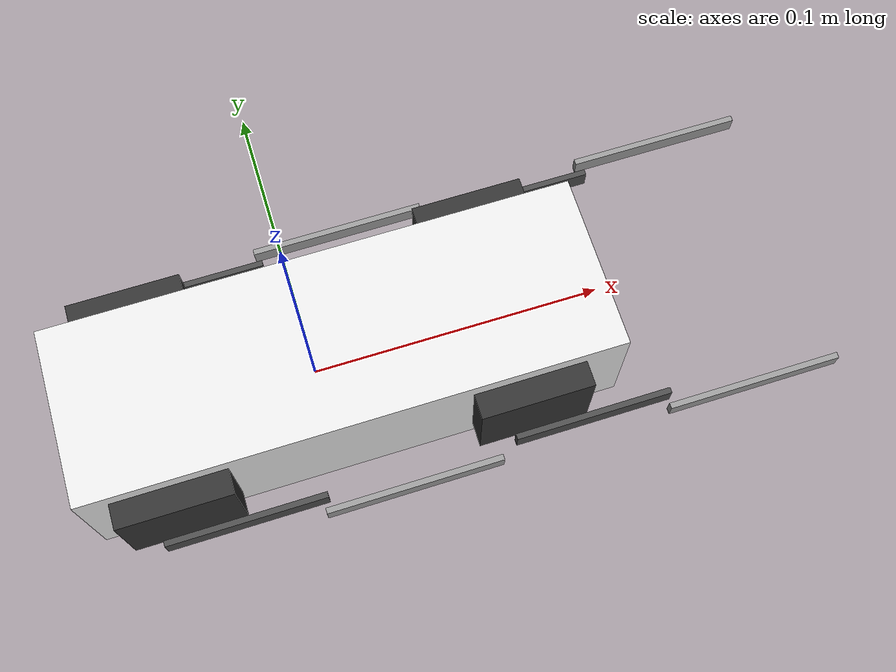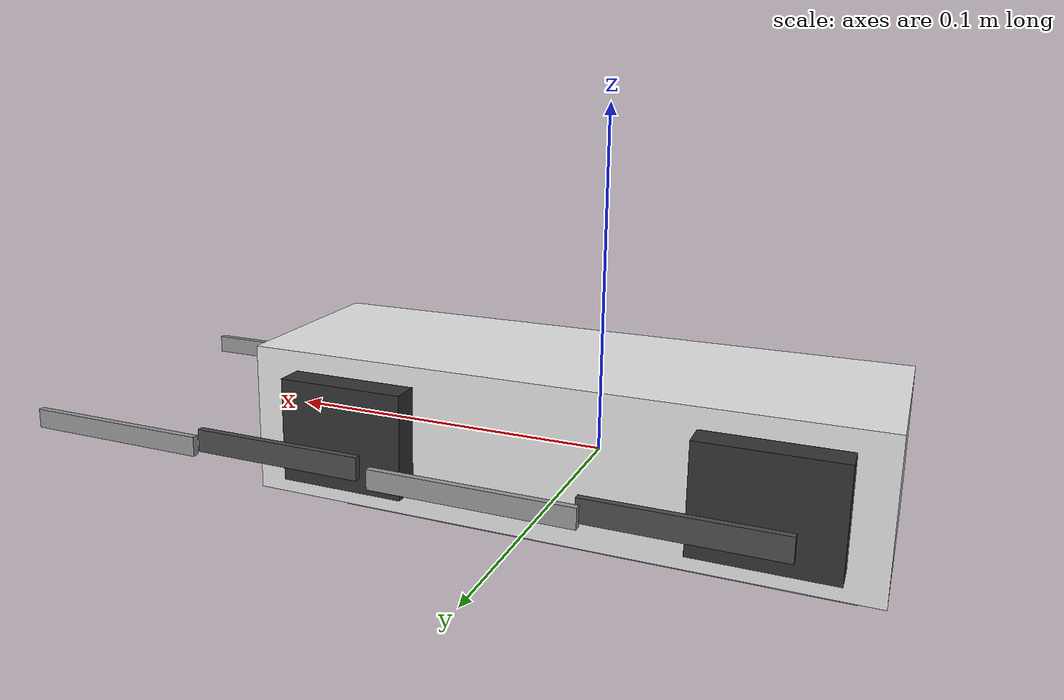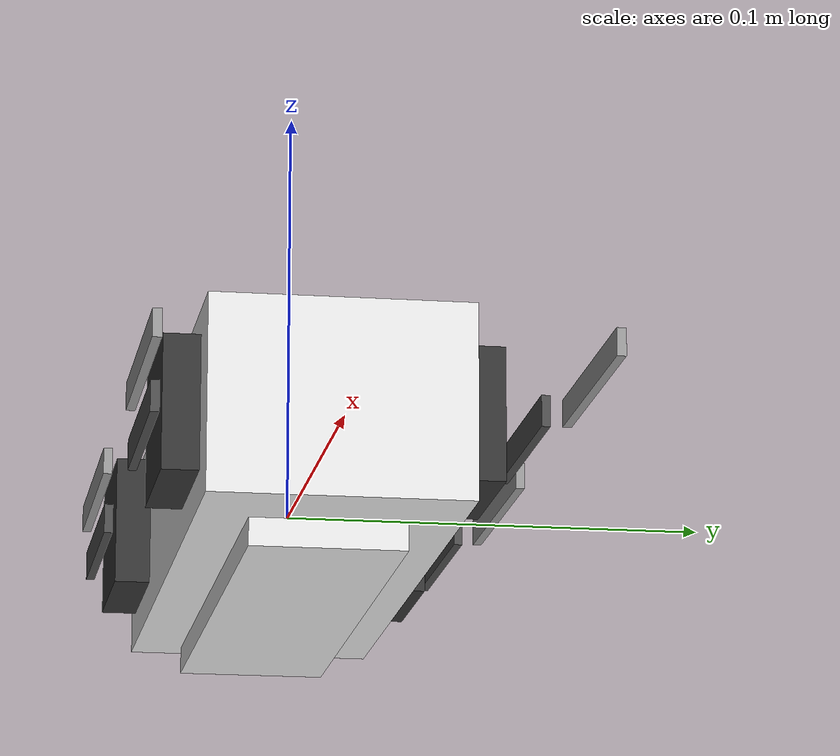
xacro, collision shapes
<?xml version="1.0"?>

<robot name="mini_pupper">

    <material name="white">
        <color rgba="0.9 0.9 0.9 1.0"/>
    </material>
    <material name="black">
        <color rgba="0.2 0.2 0.2 1.0"/>
    </material>
    <material name="dark_grey">
        <color rgba="0.3 0.3 0.3 1.0"/>
    </material>
    <material name="grey">
        <color rgba="0.6 0.6 0.6 1.0"/>
    </material>

    <!--
    ############################################
    ######              BODY              ######
    ############################################
    -->

    <!--
    ********************************************
    ******              PARTS             ******
    ********************************************
    -->
    <link name="base_link">
        <!--body-->
        <visual>
            <geometry>
                <mesh filename="meshes/base_link.STL" scale="1.0 1.0 1.0"/>
            </geometry>
            <origin rpy="0 0 0" xyz="0 0 -0.017"/>
            <material name="white"/>
        </visual>
        <collision>
            <geometry>
                <box size="0.180 0.060 0.045"/>
            </geometry>
            <origin rpy="0 0 0" xyz="0.008 0 0.005"/>
        </collision>

        <!--body-battery-holder-->
        <visual>
            <geometry>
                <box size="0.150 0.036 0.008"/>
            </geometry>
            <origin rpy="0 0 0" xyz="0.0 0.0 -0.020"/>
            <material name="black"/>
        </visual>
        <collision>
            <geometry>
                <box size="0.150 0.036 0.008"/>
            </geometry>
            <origin rpy="0 0 0" xyz="0.0 0.0 -0.020"/>
        </collision>
        <inertial>
            <origin rpy="0 0 0" xyz="0.0 0.0 0.0"/>
            <mass value="0.2"/>
            <inertia ixx="0.02" ixy="0.0" ixz="0.0" iyy="0.03" iyz="0.0" izz="0.03"/>
        </inertial>
    </link>

    <!--
    ############################################
    ######              LEG Front Right   ######
    ############################################
    -->
    <!--
    ********************************************
    ******              PARTS             ******
    ********************************************
    -->
    <link name="FR-pod">
        <visual>
            <geometry>
                <mesh filename="meshes/rf1.STL" scale="1.0 1.0 1.0"/>
            </geometry>
            <origin rpy="0.0 1.57079 0.0" xyz="0 0 0"/>
            <material name="black"/>
        </visual>
        <collision>
            <geometry>
                <box size="0.031 0.030 0.038"/>
            </geometry>
            <origin rpy="0.0 0 0" xyz="0.006 0.0 -0.006"/>
        </collision>
        <inertial>
            <mass value="0.05"/>
            <inertia ixx="0.0003" ixy="0.0" ixz="0.0" iyy="0.0008" iyz="0.0" izz="0.0008"/>
        </inertial>
    </link>

    <link name="FR-femur">
        <visual>
            <geometry>
                <mesh filename="meshes/rf2.STL" scale="1.0 1.0 1.0"/>
            </geometry>
            <origin rpy="1.57079 0.0 -1.57079" xyz="0 0 0"/>
            <material name="dark_grey"/>
        </visual>
        <collision>
            <geometry>
                <box size="0.054 0.007 0.002"/>
            </geometry>
            <origin rpy="0.0 0.0 0.0" xyz="0.025 0.0 0.0"/>
        </collision>
        <inertial>
          <mass value="0.02"/>
          <inertia ixx="0.0001" ixy="0.0" ixz="0.0" iyy="0.0001" iyz="0.0" izz="0.0001"/>
        </inertial>
    </link>

    <link name="FR-tibia">
        <visual>
            <geometry>
                <mesh filename="meshes/rf3.STL" scale="1.0 1.0 1.0"/>
            </geometry>
            <origin rpy="1.57079 0.0 -1.57079" xyz="0.000 0 0"/>
            <material name="grey"/>
        </visual>
        <collision>
            <geometry>
                <box size="0.060 0.006 0.002"/>
            </geometry>
            <origin rpy="0 0 0" xyz="0.030 0 0"/>
        </collision>
        <inertial>
          <mass value="0.01"/>
          <inertia ixx="0.0001" ixy="0.0" ixz="0.0" iyy="0.0001" iyz="0.0" izz="0.0001"/>
        </inertial>
    </link>

    <link name="FR-foot"/>

    <!--
    ********************************************
    ******             JOINTS             ******
    ********************************************
    -->
    <joint name="FR-ABD" type="revolute">
        <parent link="base_link"/>
        <child link="FR-pod"/>
        <origin rpy="0 -1.57079 0" xyz="0.059 -0.0235 0"/>
        <axis xyz="0 0 1"/>
        <limit lower="-0.4" upper="0.4" effort="100" velocity="1000"/>
    </joint>

    <joint name="FR-HIPS" type="revolute">
        <parent link="FR-pod"/>
        <child link="FR-femur"/>
        <origin rpy="-1.57079 1.57079 0" xyz="0.0 -0.019 0.0"/>
        <axis xyz="0 0 1"/>
        <limit lower="0.0" upper="3.4" effort="100" velocity="1000"/>
    </joint>

    <joint name="FR-KNEE" type="revolute">
        <parent link="FR-femur"/>
        <child link="FR-tibia"/>
        <origin rpy="0 0 0" xyz="0.050 0 -0.005"/>
        <axis xyz="0 0 1"/>
        <limit lower="-2.8" upper="0.0" effort="100" velocity="1000"/>
    </joint>

    <joint name="FR-FOOT" type="fixed">
        <parent link="FR-tibia"/>
        <child link="FR-foot"/>
        <origin rpy="0 0 0" xyz="0.060 0 0"/>
        <axis xyz="0 0 1"/>
    </joint>

    <!--
    ############################################
    ######              LEG Front Left   ######
    ############################################
    -->
    <!--
    ********************************************
    ******              PARTS             ******
    ********************************************
    -->
    <link name="FL-pod">
        <visual>
            <geometry>
                <mesh filename="meshes/lf1.STL" scale="1.0 1.0 1.0"/>
            </geometry>
            <origin rpy="0.0 1.57079 0.0" xyz="0 0 0"/>
            <material name="black"/>
        </visual>
        <collision>
            <geometry>
                <box size="0.031 0.030 0.038"/>
            </geometry>
            <origin rpy="0.0 0 0" xyz="0.006 0.0 -0.006"/>
        </collision>
        <inertial>
            <mass value="0.05"/>
            <inertia ixx="0.0003" ixy="0.0" ixz="0.0" iyy="0.0008" iyz="0.0" izz="0.0008"/>
        </inertial>
    </link>

    <link name="FL-femur">
        <visual>
            <geometry>
                <mesh filename="meshes/lf2.STL" scale="1.0 1.0 1.0"/>
            </geometry>
            <origin rpy="1.57079 0.0 -1.57079" xyz="0 0 0"/>
            <material name="dark_grey"/>
        </visual>
        <collision>
            <geometry>
                <box size="0.054 0.007 0.002"/>
            </geometry>
            <origin rpy="0.0 0.0 0.0" xyz="0.025 0.0 0.0"/>
        </collision>
        <inertial>
          <mass value="0.02"/>
          <inertia ixx="0.0001" ixy="0.0" ixz="0.0" iyy="0.0001" iyz="0.0" izz="0.0001"/>
        </inertial>
    </link>

    <link name="FL-tibia">
        <visual>
            <geometry>
                <mesh filename="meshes/lf3.STL" scale="1.0 1.0 1.0"/>
            </geometry>
            <origin rpy="1.57079 0.0 -1.57079" xyz="0.000 0 0"/>
            <material name="grey"/>
        </visual>
        <collision>
            <geometry>
                <box size="0.060 0.006 0.002"/>
            </geometry>
            <origin rpy="0 0 0" xyz="0.030 0 0"/>
        </collision>
        <inertial>
          <mass value="0.01"/>
          <inertia ixx="0.0001" ixy="0.0" ixz="0.0" iyy="0.0001" iyz="0.0" izz="0.0001"/>
        </inertial>
    </link>

    <link name="FL-foot"/>

    <!--
    ********************************************
    ******             JOINTS             ******
    ********************************************
    -->
    <joint name="FL-ABD" type="revolute">
        <parent link="base_link"/>
        <child link="FL-pod"/>
        <origin rpy="0 -1.57079 0" xyz="0.059 0.0235 0"/>
        <axis xyz="0 0 1"/>
        <limit lower="-0.4" upper="0.4" effort="100" velocity="1000"/>
    </joint>

    <joint name="FL-HIPS" type="revolute">
        <parent link="FL-pod"/>
        <child link="FL-femur"/>
        <origin rpy="-1.57079 1.57079 0" xyz="0.0 0.019 0.0"/>
        <axis xyz="0 0 1"/>
        <limit lower="0.0" upper="3.4" effort="100" velocity="1000"/>
    </joint>

    <joint name="FL-KNEE" type="revolute">
        <parent link="FL-femur"/>
        <child link="FL-tibia"/>
        <origin rpy="0 0 0" xyz="0.050 0 0.005"/>
        <axis xyz="0 0 1"/>
        <limit lower="-2.8" upper="0.0" effort="100" velocity="1000"/>
    </joint>

    <joint name="FL-FOOT" type="fixed">
        <parent link="FL-tibia"/>
        <child link="FL-foot"/>
        <origin rpy="0 0 0" xyz="0.060 0 0"/>
        <axis xyz="0 0 1"/>
    </joint>

    <!--
    ############################################
    ######              LEG Rear Right   ######
    ############################################
    -->
    <!--
    ********************************************
    ******              PARTS             ******
    ********************************************
    -->
    <link name="RR-pod">
        <visual>
            <geometry>
                <mesh filename="meshes/rb1.STL" scale="1.0 1.0 1.0"/>
            </geometry>
            <origin rpy="0.0 1.57079 0.0" xyz="0 0 0"/>
            <material name="black"/>
        </visual>
        <collision>
            <geometry>
                <box size="0.031 0.030 0.038"/>
            </geometry>
            <origin rpy="0.0 0 0" xyz="0.006 0.0 -0.006"/>
        </collision>
        <inertial>
            <mass value="0.05"/>
            <inertia ixx="0.0003" ixy="0.0" ixz="0.0" iyy="0.0008" iyz="0.0" izz="0.0008"/>
        </inertial>
    </link>

    <link name="RR-femur">
        <visual>
            <geometry>
                <mesh filename="meshes/rb2.STL" scale="1.0 1.0 1.0"/>
            </geometry>
            <origin rpy="1.57079 0.0 -1.57079" xyz="0 0 0"/>
            <material name="dark_grey"/>
        </visual>
        <collision>
            <geometry>
                <box size="0.054 0.007 0.002"/>
            </geometry>
            <origin rpy="0.0 0.0 0.0" xyz="0.025 0.0 0.0"/>
        </collision>
        <inertial>
          <mass value="0.02"/>
          <inertia ixx="0.0001" ixy="0.0" ixz="0.0" iyy="0.0001" iyz="0.0" izz="0.0001"/>
        </inertial>
    </link>

    <link name="RR-tibia">
        <visual>
            <geometry>
                <mesh filename="meshes/rb3.STL" scale="1.0 1.0 1.0"/>
            </geometry>
            <origin rpy="1.57079 0.0 -1.57079" xyz="0.000 0 0"/>
            <material name="grey"/>
        </visual>
        <collision>
            <geometry>
                <box size="0.060 0.006 0.002"/>
            </geometry>
            <origin rpy="0 0 0" xyz="0.030 0 0"/>
        </collision>
        <inertial>
          <mass value="0.01"/>
          <inertia ixx="0.0001" ixy="0.0" ixz="0.0" iyy="0.0001" iyz="0.0" izz="0.0001"/>
        </inertial>
    </link>

    <link name="RR-foot"/>

    <!--
    ********************************************
    ******             JOINTS             ******
    ********************************************
    -->
    <joint name="RR-ABD" type="revolute">
        <parent link="base_link"/>
        <child link="RR-pod"/>
        <origin rpy="0 -1.57079 0" xyz="-0.059 -0.0235 0"/>
        <axis xyz="0 0 1"/>
        <limit lower="-0.4" upper="0.4" effort="100" velocity="1000"/>
    </joint>

    <joint name="RR-HIPS" type="revolute">
        <parent link="RR-pod"/>
        <child link="RR-femur"/>
        <origin rpy="-1.57079 1.57079 0" xyz="0.0 -0.019 0.0"/>
        <axis xyz="0 0 1"/>
        <limit lower="0.0" upper="3.4" effort="100" velocity="1000"/>
    </joint>

    <joint name="RR-KNEE" type="revolute">
        <parent link="RR-femur"/>
        <child link="RR-tibia"/>
        <origin rpy="0 0 0" xyz="0.050 0 -0.005"/>
        <axis xyz="0 0 1"/>
        <limit lower="-2.8" upper="0.0" effort="100" velocity="1000"/>
    </joint>

    <joint name="RR-FOOT" type="fixed">
        <parent link="RR-tibia"/>
        <child link="RR-foot"/>
        <origin rpy="0 0 0" xyz="0.060 0 0"/>
        <axis xyz="0 0 1"/>
    </joint>

    <!--
    ############################################
    ######              Leg Rear Left    ######
    ############################################
    -->
    <!--
    ********************************************
    ******              PARTS             ******
    ********************************************
    -->
    <link name="RL-pod">
        <visual>
            <geometry>
                <mesh filename="meshes/lb1.STL" scale="1.0 1.0 1.0"/>
            </geometry>
            <origin rpy="0.0 1.57079 0.0" xyz="0 0 0"/>
            <material name="black"/>
        </visual>
        <collision>
            <geometry>
                <box size="0.031 0.030 0.038"/>
            </geometry>
            <origin rpy="0.0 0 0" xyz="0.006 0.0 -0.006"/>
        </collision>
        <inertial>
            <mass value="0.05"/>
            <inertia ixx="0.0003" ixy="0.0" ixz="0.0" iyy="0.0008" iyz="0.0" izz="0.0008"/>
        </inertial>
    </link>

    <link name="RL-femur">
        <visual>
            <geometry>
                <mesh filename="meshes/lb2.STL" scale="1.0 1.0 1.0"/>
            </geometry>
            <origin rpy="1.57079 0.0 -1.57079" xyz="0 0 0"/>
           <material name="dark_grey"/>
        </visual>
        <collision>
            <geometry>
                <box size="0.054 0.007 0.002"/>
            </geometry>
            <origin rpy="0.0 0.0 0.0" xyz="0.025 0.0 0.0"/>
        </collision>
        <inertial>
          <mass value="0.02"/>
          <inertia ixx="0.0001" ixy="0.0" ixz="0.0" iyy="0.0001" iyz="0.0" izz="0.0001"/>
        </inertial>
    </link>

    <link name="RL-tibia">
        <visual>
            <geometry>
                <mesh filename="meshes/lb3.STL" scale="1.0 1.0 1.0"/>
            </geometry>
            <origin rpy="1.57079 0.0 -1.57079" xyz="0.000 0 0"/>
            <material name="grey"/>
        </visual>
        <collision>
            <geometry>
                <box size="0.060 0.006 0.002"/>
            </geometry>
            <origin rpy="0 0 0" xyz="0.030 0 0"/>
        </collision>
        <inertial>
          <mass value="0.01"/>
          <inertia ixx="0.0001" ixy="0.0" ixz="0.0" iyy="0.0001" iyz="0.0" izz="0.0001"/>
        </inertial>
    </link>

    <link name="RL-foot"/>

    <!--
    ********************************************
    ******             JOINTS             ******
    ********************************************
    -->
    <joint name="RL-ABD" type="revolute">
        <parent link="base_link"/>
        <child link="RL-pod"/>
        <origin rpy="0 -1.57079 0" xyz="-0.059 0.0235 0"/>
        <axis xyz="0 0 1"/>
        <limit lower="-0.4" upper="0.4" effort="100" velocity="1000"/>
    </joint>

    <joint name="RL-HIPS" type="revolute">
        <parent link="RL-pod"/>
        <child link="RL-femur"/>
        <origin rpy="-1.57079 1.57079 0" xyz="0.0 0.019 0.0"/>
        <axis xyz="0 0 1"/>
        <limit lower="0.0" upper="3.4" effort="100" velocity="1000"/>
    </joint>

    <joint name="RL-KNEE" type="revolute">
        <parent link="RL-femur"/>
        <child link="RL-tibia"/>
        <origin rpy="0 0 0" xyz="0.050 0 0.005"/>
        <axis xyz="0 0 1"/>
        <limit lower="-2.8" upper="0.0" effort="100" velocity="1000"/>
    </joint>

    <joint name="RL-FOOT" type="fixed">
        <parent link="RL-tibia"/>
        <child link="RL-foot"/>
        <origin rpy="0 0 0" xyz="0.060 0 0"/>
        <axis xyz="0 0 1"/>
    </joint>

</robot>
